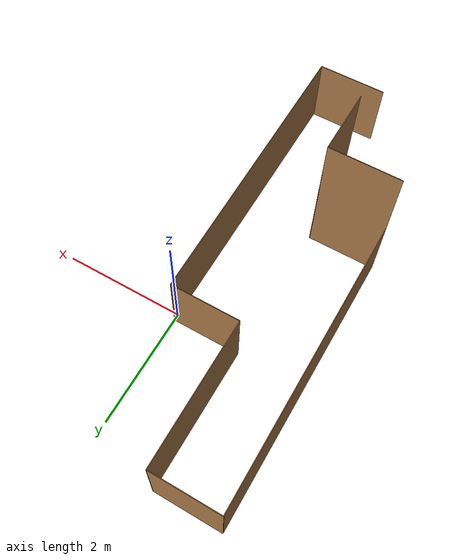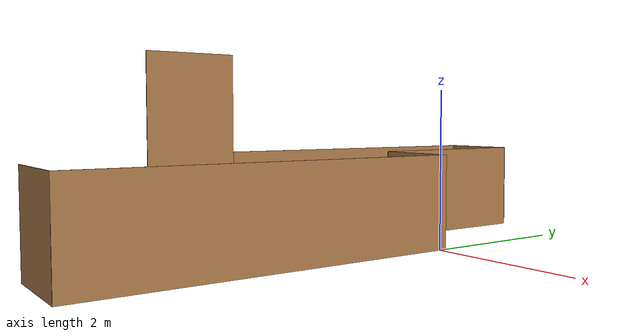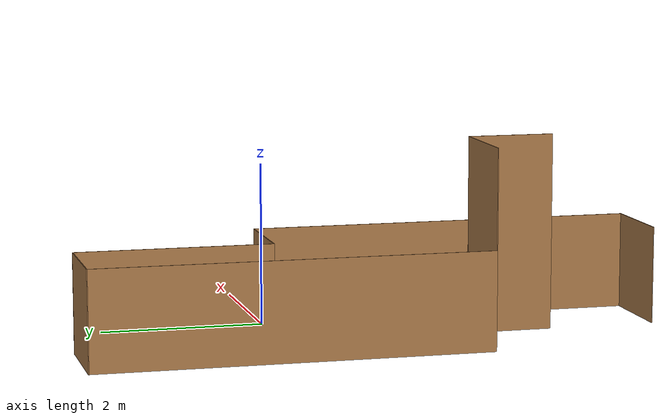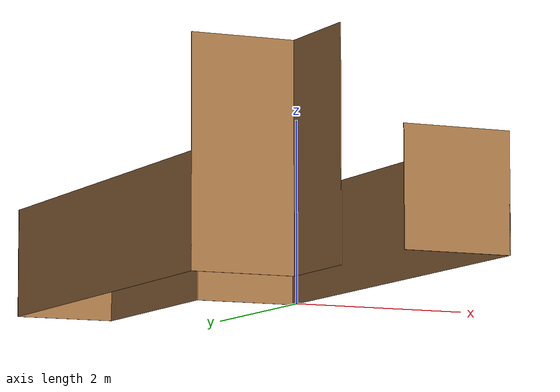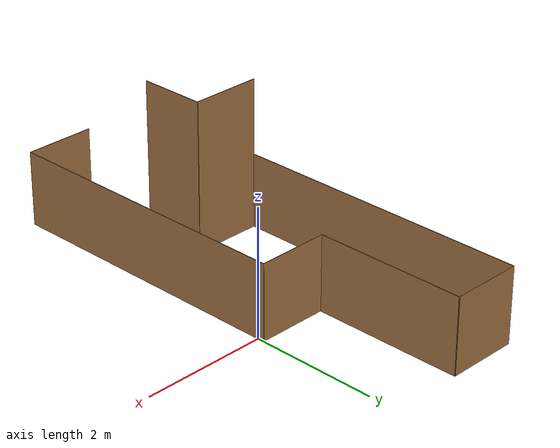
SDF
<?xml version='1.0'?>
<sdf version='1.6'>
  <model name='MAN1_(CENTER)'>
    <pose frame=''>-1.1325 -1.105 0 0 -0 0</pose>
    <link name='Wall_0'>
      <collision name='Wall_0_Collision'>
        <geometry>
          <box>
            <size>1.135 0.01 1.2</size>
          </box>
        </geometry>
        <pose frame=''>0 0 0.6 0 -0 0</pose>
      </collision>
      <visual name='Wall_0_Visual'>
        <pose frame=''>0 0 0.6 0 -0 0</pose>
        <geometry>
          <box>
            <size>1.135 0.01 1.2</size>
          </box>
        </geometry>
        <material>
          <script>
            <uri>file://media/materials/scripts/gazebo.material</uri>
            <name>Gazebo/Wood</name>
          </script>
          <ambient>1 1 1 1</ambient>
        </material>
        <meta>
          <layer>0</layer>
        </meta>
      </visual>
      <pose frame=''>0.565 -3.585 0 0 -0 0</pose>
    </link>
    <link name='Wall_10'>
      <collision name='Wall_10_Collision'>
        <geometry>
          <box>
            <size>4.795 0.01 1.2</size>
          </box>
        </geometry>
        <pose frame=''>0 0 0.6 0 -0 0</pose>
      </collision>
      <visual name='Wall_10_Visual'>
        <pose frame=''>0 0 0.6 0 -0 0</pose>
        <geometry>
          <box>
            <size>4.795 0.01 1.2</size>
          </box>
        </geometry>
        <material>
          <script>
            <uri>file://media/materials/scripts/gazebo.material</uri>
            <name>Gazebo/Wood</name>
          </script>
          <ambient>1 1 1 1</ambient>
        </material>
        <meta>
          <layer>0</layer>
        </meta>
      </visual>
      <pose frame=''>-1.1275 1.1925 0 0 -0 -1.5708</pose>
    </link>
    <link name='Wall_16'>
      <collision name='Wall_16_Collision'>
        <geometry>
          <box>
            <size>1.135 0.01 2.4</size>
          </box>
        </geometry>
        <pose frame=''>0 0 1.2 0 -0 0</pose>
      </collision>
      <visual name='Wall_16_Visual'>
        <pose frame=''>0 0 1.2 0 -0 0</pose>
        <geometry>
          <box>
            <size>1.135 0.01 2.4</size>
          </box>
        </geometry>
        <material>
          <script>
            <uri>file://media/materials/scripts/gazebo.material</uri>
            <name>Gazebo/Wood</name>
          </script>
          <ambient>1 1 1 1</ambient>
        </material>
        <meta>
          <layer>0</layer>
        </meta>
      </visual>
      <pose frame=''>-0.565 -1.2 0 0 -0 0</pose>
    </link>
    <link name='Wall_18'>
      <collision name='Wall_18_Collision'>
        <geometry>
          <box>
            <size>1.06 0.01 2.4</size>
          </box>
        </geometry>
        <pose frame=''>0 0 1.2 0 -0 0</pose>
      </collision>
      <visual name='Wall_18_Visual'>
        <pose frame=''>0 0 1.2 0 -0 0</pose>
        <geometry>
          <box>
            <size>1.06 0.01 2.4</size>
          </box>
        </geometry>
        <material>
          <script>
            <uri>file://media/materials/scripts/gazebo.material</uri>
            <name>Gazebo/Wood</name>
          </script>
          <ambient>1 1 1 1</ambient>
        </material>
        <meta>
          <layer>0</layer>
        </meta>
      </visual>
      <pose frame=''>-0.0025 -1.725 0 0 -0 -1.5708</pose>
    </link>
    <link name='Wall_2'>
      <collision name='Wall_2_Collision'>
        <geometry>
          <box>
            <size>4.795 0.01 1.2</size>
          </box>
        </geometry>
        <pose frame=''>0 0 0.6 0 -0 0</pose>
      </collision>
      <visual name='Wall_2_Visual'>
        <pose frame=''>0 0 0.6 0 -0 0</pose>
        <geometry>
          <box>
            <size>4.795 0.01 1.2</size>
          </box>
        </geometry>
        <material>
          <script>
            <uri>file://media/materials/scripts/gazebo.material</uri>
            <name>Gazebo/Wood</name>
          </script>
          <ambient>1 1 1 1</ambient>
        </material>
        <meta>
          <layer>0</layer>
        </meta>
      </visual>
      <pose frame=''>1.1275 -1.1925 0 0 -0 1.5708</pose>
    </link>
    <link name='Wall_4'>
      <collision name='Wall_4_Collision'>
        <geometry>
          <box>
            <size>1.13997 0.01 1.2</size>
          </box>
        </geometry>
        <pose frame=''>0 0 0.6 0 -0 0</pose>
      </collision>
      <visual name='Wall_4_Visual'>
        <pose frame=''>0 0 0.6 0 -0 0</pose>
        <geometry>
          <box>
            <size>1.13997 0.01 1.2</size>
          </box>
        </geometry>
        <material>
          <script>
            <uri>file://media/materials/scripts/gazebo.material</uri>
            <name>Gazebo/Wood</name>
          </script>
          <ambient>1 1 1 1</ambient>
        </material>
        <meta>
          <layer>0</layer>
        </meta>
      </visual>
      <pose frame=''>0.5625 1.2 0 0 -0 3.14159</pose>
    </link>
    <link name='Wall_6'>
      <collision name='Wall_6_Collision'>
        <geometry>
          <box>
            <size>2.395 0.01 1.2</size>
          </box>
        </geometry>
        <pose frame=''>0 0 0.6 0 -0 0</pose>
      </collision>
      <visual name='Wall_6_Visual'>
        <pose frame=''>0 0 0.6 0 -0 0</pose>
        <geometry>
          <box>
            <size>2.395 0.01 1.2</size>
          </box>
        </geometry>
        <material>
          <script>
            <uri>file://media/materials/scripts/gazebo.material</uri>
            <name>Gazebo/Wood</name>
          </script>
          <ambient>1 1 1 1</ambient>
        </material>
        <meta>
          <layer>0</layer>
        </meta>
      </visual>
      <pose frame=''>-0.0025 2.3925 0 0 -0 1.5708</pose>
    </link>
    <link name='Wall_8'>
      <collision name='Wall_8_Collision'>
        <geometry>
          <box>
            <size>1.135 0.01 1.2</size>
          </box>
        </geometry>
        <pose frame=''>0 0 0.6 0 -0 0</pose>
      </collision>
      <visual name='Wall_8_Visual'>
        <pose frame=''>0 0 0.6 0 -0 0</pose>
        <geometry>
          <box>
            <size>1.135 0.01 1.2</size>
          </box>
        </geometry>
        <material>
          <script>
            <uri>file://media/materials/scripts/gazebo.material</uri>
            <name>Gazebo/Wood</name>
          </script>
          <ambient>1 1 1 1</ambient>
        </material>
        <meta>
          <layer>0</layer>
        </meta>
      </visual>
      <pose frame=''>-0.565 3.585 0 0 -0 3.14159</pose>
    </link>
    <static>1</static>
  </model>
</sdf>
